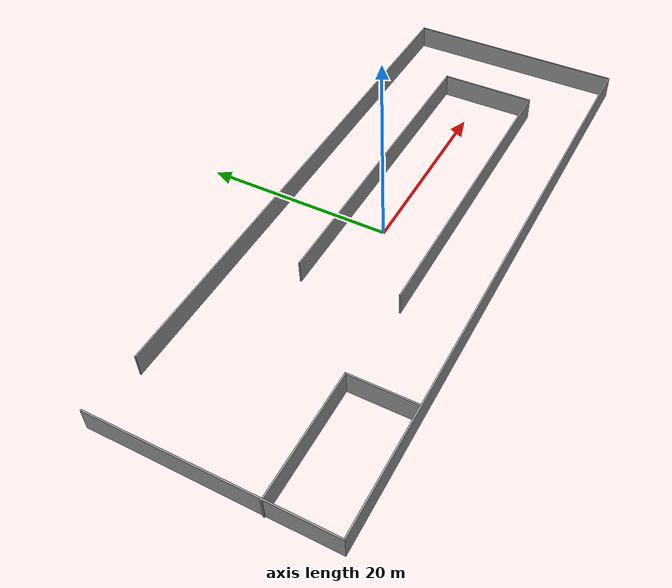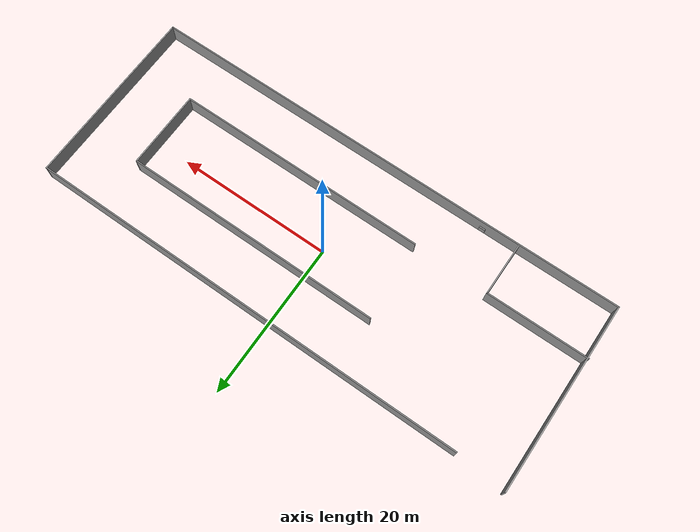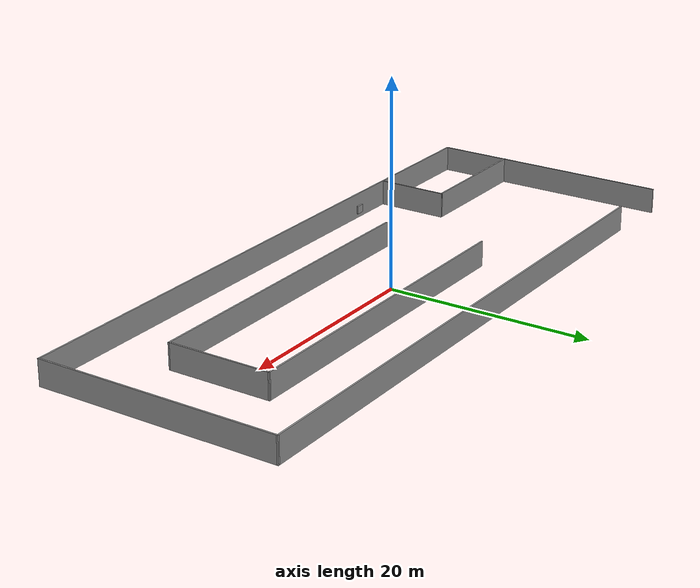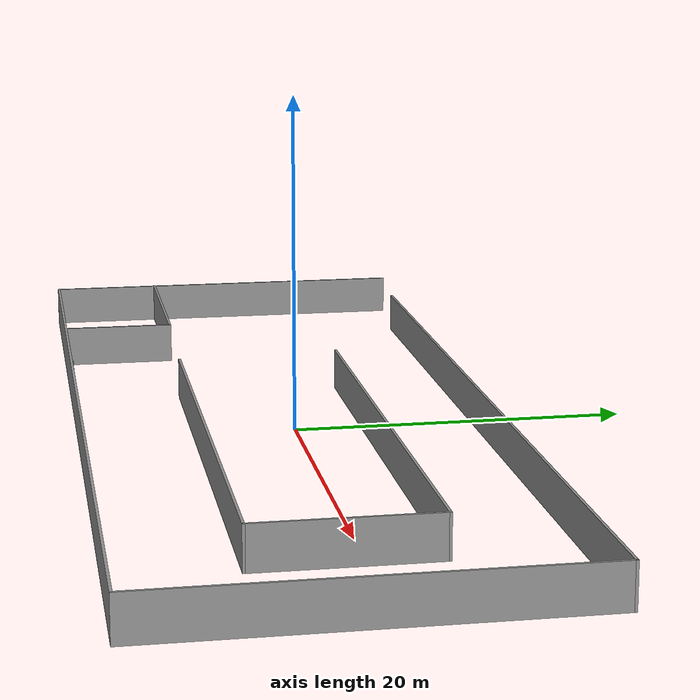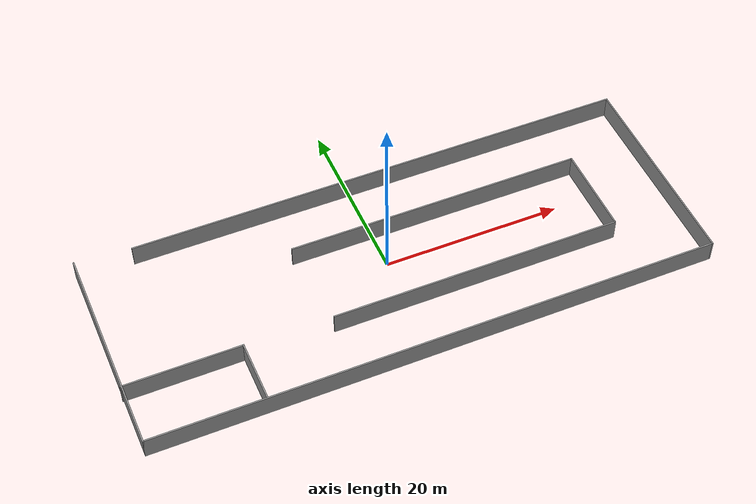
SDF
<?xml version='1.0'?>
<sdf version='1.7'>
  <model name='Untitled'>
    <pose>0.45514 -0.751493 0 0 -0 0</pose>
    <link name='Wall_18'>
      <collision name='Wall_18_Collision'>
        <geometry>
          <box>
            <size>24.25 0.15 2.5</size>
          </box>
        </geometry>
        <pose>0 0 1.25 0 -0 0</pose>
      </collision>
      <visual name='Wall_18_Visual'>
        <pose>0 0 1.25 0 -0 0</pose>
        <geometry>
          <box>
            <size>24.25 0.15 2.5</size>
          </box>
        </geometry>
        <material>
          <script>
            <uri>file://media/materials/scripts/gazebo.material</uri>
            <name>Gazebo/Grey</name>
          </script>
          <ambient>1 1 1 1</ambient>
        </material>
        <meta>
          <layer>0</layer>
        </meta>
      </visual>
      <pose>-31.3645 0 0 0 -0 -1.5708</pose>
    </link>
    <link name='Wall_19'>
      <collision name='Wall_19_Collision'>
        <geometry>
          <box>
            <size>63 0.15 2.5</size>
          </box>
        </geometry>
        <pose>0 0 1.25 0 -0 0</pose>
      </collision>
      <visual name='Wall_19_Visual'>
        <pose>0 0 1.25 0 -0 0</pose>
        <geometry>
          <box>
            <size>63 0.15 2.5</size>
          </box>
        </geometry>
        <material>
          <script>
            <uri>file://media/materials/scripts/gazebo.material</uri>
            <name>Gazebo/Grey</name>
          </script>
          <ambient>1 1 1 1</ambient>
        </material>
        <meta>
          <layer>0</layer>
        </meta>
      </visual>
      <pose>0.060491 -12.05 0 0 -0 0</pose>
    </link>
    <link name='Wall_20'>
      <collision name='Wall_20_Collision'>
        <geometry>
          <box>
            <size>23.75 0.15 2.5</size>
          </box>
        </geometry>
        <pose>0 0 1.25 0 -0 0</pose>
      </collision>
      <visual name='Wall_20_Visual'>
        <pose>0 0 1.25 0 -0 0</pose>
        <geometry>
          <box>
            <size>23.75 0.15 2.5</size>
          </box>
        </geometry>
        <material>
          <script>
            <uri>file://media/materials/scripts/gazebo.material</uri>
            <name>Gazebo/Grey</name>
          </script>
          <ambient>1 1 1 1</ambient>
        </material>
        <meta>
          <layer>0</layer>
        </meta>
      </visual>
      <pose>31.4855 -0.25 0 0 -0 1.5708</pose>
    </link>
    <link name='Wall_21'>
      <collision name='Wall_21_Collision'>
        <geometry>
          <box>
            <size>56.75 0.15 2.5</size>
          </box>
        </geometry>
        <pose>0 0 1.25 0 -0 0</pose>
      </collision>
      <visual name='Wall_21_Visual'>
        <pose>0 0 1.25 0 -0 0</pose>
        <geometry>
          <box>
            <size>56.75 0.15 2.5</size>
          </box>
        </geometry>
        <material>
          <script>
            <uri>file://media/materials/scripts/gazebo.material</uri>
            <name>Gazebo/Grey</name>
          </script>
          <ambient>1 1 1 1</ambient>
        </material>
        <meta>
          <layer>0</layer>
        </meta>
      </visual>
      <pose>3.18549 11.55 0 0 -0 3.14159</pose>
    </link>
    <link name='Wall_23'>
      <collision name='Wall_23_Collision'>
        <geometry>
          <box>
            <size>33.25 0.15 2.5</size>
          </box>
        </geometry>
        <pose>0 0 1.25 0 -0 0</pose>
      </collision>
      <visual name='Wall_23_Visual'>
        <pose>0 0 1.25 0 -0 0</pose>
        <geometry>
          <box>
            <size>33.25 0.15 2.5</size>
          </box>
        </geometry>
        <material>
          <script>
            <uri>file://media/materials/scripts/gazebo.material</uri>
            <name>Gazebo/Grey</name>
          </script>
          <ambient>1 1 1 1</ambient>
        </material>
        <meta>
          <layer>0</layer>
        </meta>
      </visual>
      <pose>6.90194 4.79102 0 0 -0 0</pose>
    </link>
    <link name='Wall_24'>
      <collision name='Wall_24_Collision'>
        <geometry>
          <box>
            <size>10.25 0.15 2.5</size>
          </box>
        </geometry>
        <pose>0 0 1.25 0 -0 0</pose>
      </collision>
      <visual name='Wall_24_Visual'>
        <pose>0 0 1.25 0 -0 0</pose>
        <geometry>
          <box>
            <size>10.25 0.15 2.5</size>
          </box>
        </geometry>
        <material>
          <script>
            <uri>file://media/materials/scripts/gazebo.material</uri>
            <name>Gazebo/Grey</name>
          </script>
          <ambient>1 1 1 1</ambient>
        </material>
        <meta>
          <layer>0</layer>
        </meta>
      </visual>
      <pose>23.4519 -0.258979 0 0 -0 -1.5708</pose>
    </link>
    <link name='Wall_25'>
      <collision name='Wall_25_Collision'>
        <geometry>
          <box>
            <size>32.5 0.15 2.5</size>
          </box>
        </geometry>
        <pose>0 0 1.25 0 -0 0</pose>
      </collision>
      <visual name='Wall_25_Visual'>
        <pose>0 0 1.25 0 -0 0</pose>
        <geometry>
          <box>
            <size>32.5 0.15 2.5</size>
          </box>
        </geometry>
        <material>
          <script>
            <uri>file://media/materials/scripts/gazebo.material</uri>
            <name>Gazebo/Grey</name>
          </script>
          <ambient>1 1 1 1</ambient>
        </material>
        <meta>
          <layer>0</layer>
        </meta>
      </visual>
      <pose>7.27694 -5.30898 0 0 -0 3.14159</pose>
    </link>
    <link name='Wall_27'>
      <collision name='Wall_27_Collision'>
        <geometry>
          <box>
            <size>13 0.15 2.5</size>
          </box>
        </geometry>
        <pose>0 0 1.25 0 -0 0</pose>
      </collision>
      <visual name='Wall_27_Visual'>
        <pose>0 0 1.25 0 -0 0</pose>
        <geometry>
          <box>
            <size>13 0.15 2.5</size>
          </box>
        </geometry>
        <material>
          <script>
            <uri>file://media/materials/scripts/gazebo.material</uri>
            <name>Gazebo/Grey</name>
          </script>
          <ambient>1 1 1 1</ambient>
        </material>
        <meta>
          <layer>0</layer>
        </meta>
      </visual>
      <pose>-25.0605 -5.06909 0 0 -0 0</pose>
    </link>
    <link name='Wall_28'>
      <collision name='Wall_28_Collision'>
        <geometry>
          <box>
            <size>7 0.15 2.5</size>
          </box>
        </geometry>
        <pose>0 0 1.25 0 -0 0</pose>
      </collision>
      <visual name='Wall_28_Visual'>
        <pose>0 0 1.25 0 -0 0</pose>
        <geometry>
          <box>
            <size>7 0.15 2.5</size>
          </box>
        </geometry>
        <material>
          <script>
            <uri>file://media/materials/scripts/gazebo.material</uri>
            <name>Gazebo/Grey</name>
          </script>
          <ambient>1 1 1 1</ambient>
        </material>
        <meta>
          <layer>0</layer>
        </meta>
      </visual>
      <pose>-18.6355 -8.49409 0 0 -0 -1.5708</pose>
    </link>
    <link name='Window_0'>
      <collision name='Window_0_Collision'>
        <geometry>
          <box>
            <size>0.8 0.17 0.8</size>
          </box>
        </geometry>
        <pose>0 0 0.4 0 -0 0</pose>
      </collision>
      <visual name='Window_0_Visual'>
        <pose>0 0 0.4 0 -0 0</pose>
        <geometry>
          <box>
            <size>0.8 0.17 0.8</size>
          </box>
        </geometry>
        <material>
          <script>
            <uri>file://media/materials/scripts/gazebo.material</uri>
            <name>Gazebo/Grey</name>
          </script>
        </material>
      </visual>
      <pose>-14.0639 -11.8441 0.5 0 -0 0</pose>
    </link>
    <static>1</static>
  </model>
</sdf>
